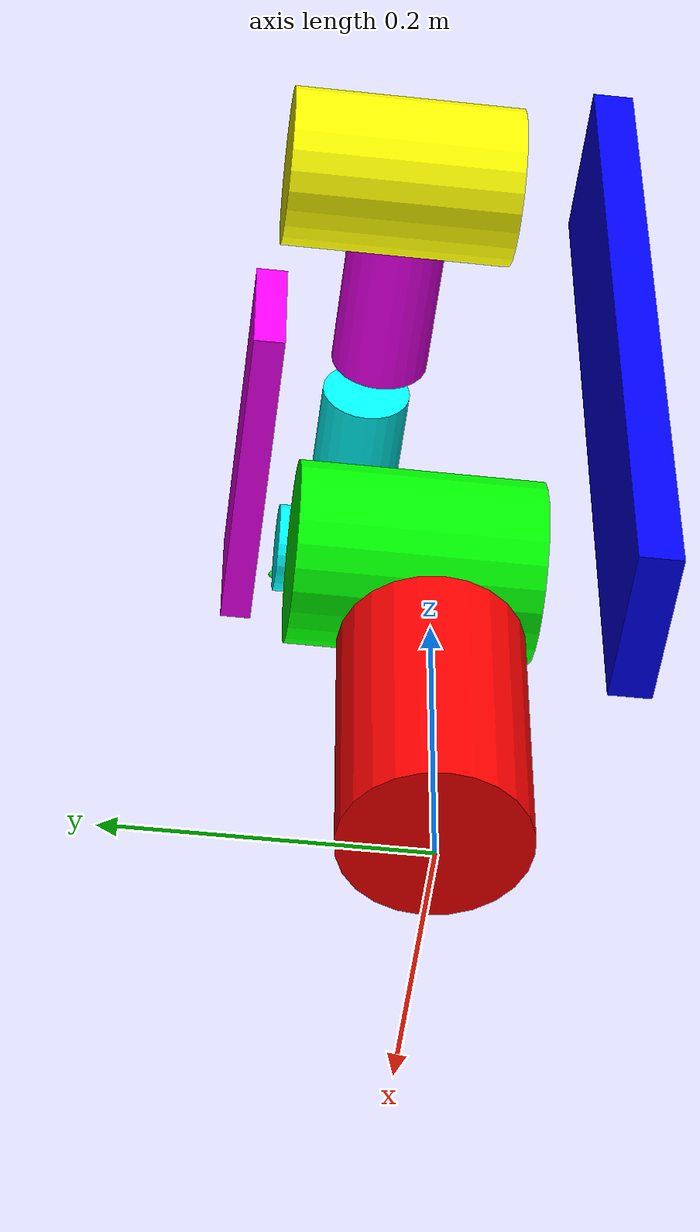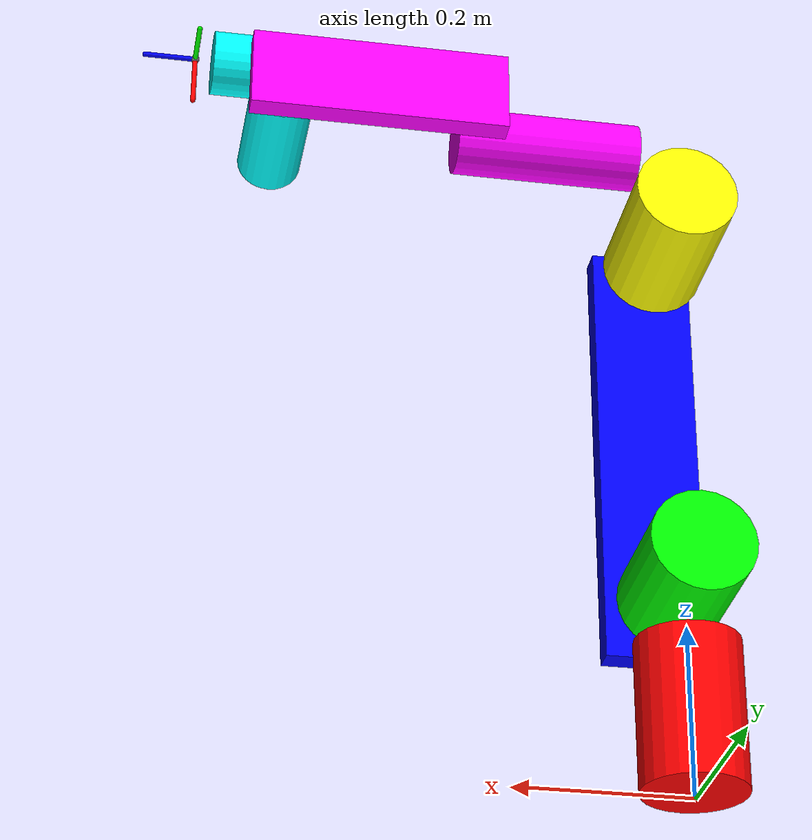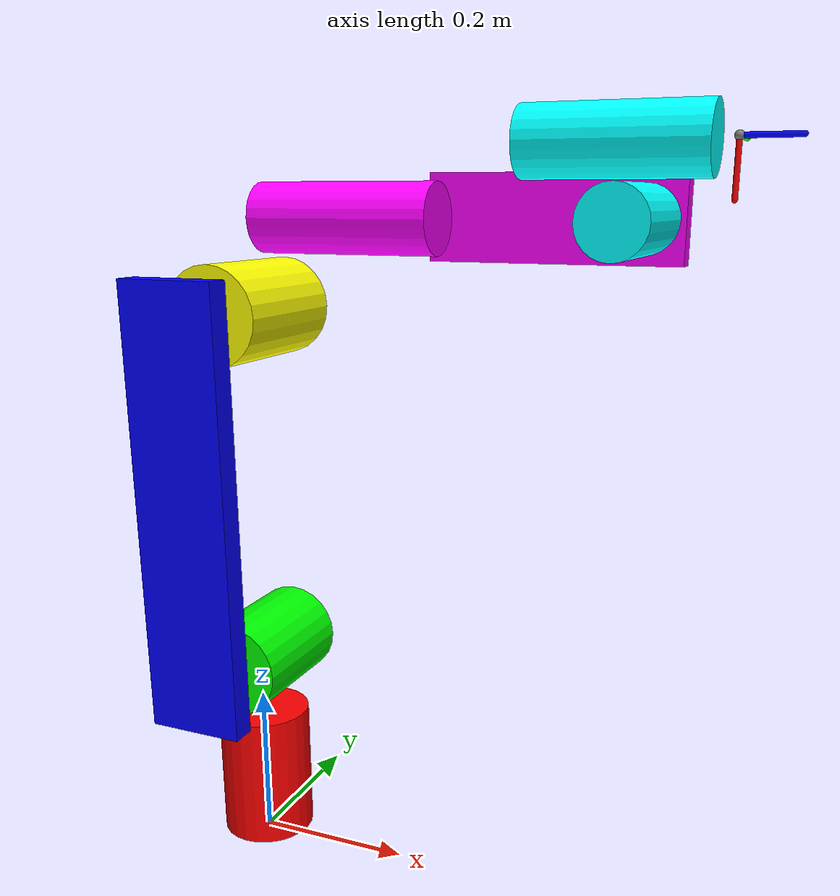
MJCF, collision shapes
<?xml version="1.0" encoding="utf-8"?>
<mujoco>
  <compiler autolimits="true" balanceinertia="true" meshdir="assets" angle="radian" coordinate="local"/>
  <option integrator="implicitfast"/>
  <option gravity = "0 0 0"/>
  <size memory="2M"/>

  <visual>
    <global azimuth="120" elevation="-20"/>
    <headlight diffuse="0.6 0.6 0.6" ambient="0.1 0.1 0.1" specular="0 0 0"/>
    <rgba haze="0.15 0.25 0.35 1"/>
  </visual>

  <default>
    <default class="Gofa/">
      <material specular="0.5" shininess="0.25"/>
      <default class="Gofa/type_joint1">
        <joint range="-3.1415000000000002 3.1415000000000002"/>
        <general ctrlrange="-3.1415000000000002 3.1415000000000002"/>
      </default>
      <default class="Gofa/visual">
        <geom type="mesh" group="2" contype="0" conaffinity="0"/>
      </default>
      <default class="Gofa/collision">
        <geom type="mesh" group="3" rgba="0.7 0.1 0.1 0.3" contype="1" conaffinity="1"/>
      </default>
    </default>
  </default>

  <asset>
    <material name="Gofa/white" class="Gofa/" rgba="1 1 1 1" />
    <material name="Gofa/grey" class="Gofa/" rgba="0.278 0.278 0.278 1" />
    <mesh name="Gofa/base"  class="Gofa/" file="base_link.stl" scale="1 1 1"/>
    <mesh name="Gofa/link1" class="Gofa/" file="link_1.stl"    scale="1 1 1"/>
    <mesh name="Gofa/link2" class="Gofa/" file="link_2.stl"    scale="1 1 1"/>
    <mesh name="Gofa/link3" class="Gofa/" file="link_3.stl"    scale="1 1 1"/>
    <mesh name="Gofa/link4" class="Gofa/" file="link_4.stl"    scale="1 1 1"/>
    <mesh name="Gofa/link5" class="Gofa/" file="link_5.stl"    scale="1 1 1"/>
    <mesh name="Gofa/link6" class="Gofa/" file="link_6.stl"    scale="1 1 1"/>
  </asset>

  <worldbody>
    <light pos="0 0 1.5" dir="0 0 -1" directional="true"/>
    <body name="Gofa/Robot">
      <body name="base" pos="0 0 0">
        <inertial pos="-0.0012013793465437 -0.000175191786981708 0.0862146007385352" euler="0 0 0" mass="3.50083457958494" diaginertia="0.0153015257917955 0.0159333503953857 0.0112162302268266"/>
        <geom name="Gofa/geom_base_visual"    class="Gofa/visual"    material="Gofa/grey" mesh="Gofa/base"/>
        <geom name="Gofa/geom_base_collision" class="Gofa/collision"
          type="cylinder"
          pos="0 0 0.094"
          size="0.06 0.087"
          rgba="1 0 0 0.4"
          contype="1" conaffinity="1" group="3"/>

        <body name="link_1" pos="0 0 0.1875" euler="0 0 0">
          <inertial pos="2.08682453325091e-6 0.0103608399967513 0.0705307203199506" euler="0 0 0" mass="2.76743491139404" diaginertia="0.0115158625894577 0.006494848329231 0.0109446835358581"/>
          <joint name="joint_1" class="Gofa/type_joint1" axis="0 0 1"/>
          <geom name="Gofa/geom_link1_visual"    class="Gofa/visual"    material="Gofa/grey" mesh="Gofa/link1"/>
          <geom name="Gofa/geom_link1_collision" class="Gofa/collision"
            type="cylinder"
            pos="0 0.01 0.075"
            euler="1.5708 0 0"
            size="0.06 0.08"
            rgba="0 1 0 0.4"
            contype="1" conaffinity="1" group="3"/>

          <body name="link_2" pos="0 -0.085 0.0775" euler="0 0 0">
            <inertial pos="1.34018352211628E-06 -0.0500118376116071 0.222001399322246" euler="0 0 0" mass="4.28904168670464" diaginertia="0.130524729873898 0.133278449324229 0.00669457974697178"/>
            <joint name="joint_2" class="Gofa/type_joint1" axis="0 1 0"/>
            <geom name="Gofa/geom_link2_visual"    class="Gofa/visual"    material="Gofa/grey" mesh="Gofa/link2"/>
            <geom name="Gofa/geom_link2_collision" class="Gofa/collision"
              type="box"
              pos="0.0 -0.055 0.222"
              size="0.06 0.015 0.27"
              rgba="0 0 1 0.4"
              contype="1" conaffinity="1" group="3"/>

            <body name="link_3" pos="0 -0.00100000000000007 0.444" euler="0 0 0">
              <inertial pos="0.0128129281453599 0.0944171780907046 0.0247427540642403" euler="0 0 0" mass="3.38333107992875" diaginertia="0.0175626138728642 0.0140230068919562 0.013275205067567"/>
              <joint name="joint_3" range="-3.926990817 1.4835298642" axis="0 1 0"/>
              <geom name="Gofa/geom_link3_visual"    class="Gofa/visual"    material="Gofa/grey" mesh="Gofa/link3"/>
              <geom name="Gofa/geom_link3_collision" class="Gofa/collision"
                type="cylinder"
                pos="0.0 0.1 0.0"
                euler="1.5708 0 0"
                size="0.06 0.087"
                rgba="1 1 0 0.4"
                contype="1" conaffinity="1" group="3"/>

              <body name="link_4" pos="0.096 0.0860000000000001 0.11" euler="0 0 0">
                <inertial pos="0.160558561602322 0.041976811408979 -2.36623354021859E-07" euler="0 0 0" mass="2.77857535641324" diaginertia="0.00881683095901354 0.0340754175571832 0.0389358932156922"/>
                <joint name="joint_4" class="Gofa/type_joint1" axis="1 0 0"/>
                <geom name="Gofa/geom_link4_visual"    class="Gofa/visual"    material="Gofa/white" mesh="Gofa/link4"/>
                <!-- Long arm along X -->
                <geom name="Gofa/geom_link4_collision_arm" class="Gofa/collision"
                      type="cylinder"
                      pos="0.05 0.0 0"
                      euler="0 1.5708 0"
                      size="0.04 0.11"
                      rgba="1 0 1 0.4"
                      contype="1" conaffinity="1" group="3"/>

                <!-- Joint head at the end -->
                <geom name="Gofa/geom_link4_collision_head" class="Gofa/collision"
                      type="box"
                      pos="0.265 0.095 0"
                      size="0.15 0.013 0.05"
                      rgba="1 0 1 0.4"
                      contype="1" conaffinity="1" group="3"/>

                <body name="link_5" pos="0.374 0.0744999999999998 0" euler="0 0 0">
                  <inertial pos="-0.0147152361879962 -0.0785646469392633 0.0427558021601431" euler="0 0 0" mass="3.01105814739001" diaginertia="0.0114597336686444 0.013561904467501 0.0108480119549914"/>
                  <joint name="joint_5" class="Gofa/type_joint1" axis="0 1 0"/>
                  <geom name="Gofa/geom_link5_visual"    class="Gofa/visual"    material="Gofa/white" mesh="Gofa/link5"/>
                  <!-- Arm along Y -->
                  <geom name="Gofa/geom_link5_collision_y" class="Gofa/collision"
                        type="cylinder"
                        pos="0 -0.085 0"
                        euler="1.5708 0 0"
                        size="0.038 0.075"
                        rgba="0 1 1 0.4"
                        contype="1" conaffinity="1" group="3"/>

                  <!-- Arm along Z -->
                  <geom name="Gofa/geom_link5_collision_z" class="Gofa/collision"
                        type="cylinder"
                        pos="-0.02 -0.075 0.078"
                        euler="1.5708 1.5708 0"
                        size="0.038 0.1"
                        rgba="0 1 1 0.4"
                        contype="1" conaffinity="1" group="3"/>

                  <body name="link_6" pos="0.0679999999999995 -0.0744999999999998 0.0800000000000003" euler="0 0 0">
                    <inertial pos="0.0137506852604966 0.000239804131398652 -0.000341962798940165" euler="0 0 0" mass="0.146500988015653" diaginertia="0.000128977630055306 0 7.65022909768016e-5"/>
                    <joint name="joint_6" class="Gofa/type_joint1" range="-4.7123889804 4.7123889804" axis="1 0 0"/>
                    <geom name="Gofa/geom_link6_visual"    class="Gofa/visual"    rgba="0.6 0.6 0.6 1" mesh="Gofa/link6"/>

                    <site name="ee_site" pos="0.0326 0 0" quat="0.7071 0 0.7071 0"/>
                    <body name="ee_frame_visual_only" pos="0.0326 0 0" quat="0.7071 0 0.7071 0">
                      <geom type="capsule" fromto="0 0 0 0.05 0 0" rgba="1 0 0 1" size="0.002" contype="0" conaffinity="0"/>
                      <geom type="capsule" fromto="0 0 0 0 0.05 0" rgba="0 1 0 1" size="0.002" contype="0" conaffinity="0"/>
                      <geom type="capsule" fromto="0 0 0 0 0 0.05" rgba="0 0 1 1" size="0.002" contype="0" conaffinity="0"/>

                      <!-- Reference frame attached @ tool tip -->
                      <body name="tool_frame" pos="0 0 0" quat="1 0 0 0">
                        <site name="tool_site" pos="0 0 0" quat="1 0 0 0"/>
                        <geom type="capsule" fromto="0 0 0 0.06 0 0" rgba="1 0 0 1" size="0.003" contype="0" conaffinity="0"/>
                        <geom type="capsule" fromto="0 0 0 0 0.06 0" rgba="0 1 0 1" size="0.003" contype="0" conaffinity="0"/>
                        <geom type="capsule" fromto="0 0 0 0 0 0.06" rgba="0 0 1 1" size="0.003" contype="0" conaffinity="0"/>
                      </body>
                    </body>
                  </body>
                </body>
              </body>
            </body>
          </body>
        </body>
      </body>
    </body>
  </worldbody>

  <actuator>
    <motor joint="joint_1" gear="1"/>
    <motor joint="joint_2" gear="1"/>
    <motor joint="joint_3" gear="1"/>
    <motor joint="joint_4" gear="1"/>
    <motor joint="joint_5" gear="1"/>
    <motor joint="joint_6" gear="1"/>
  </actuator>

</mujoco>
